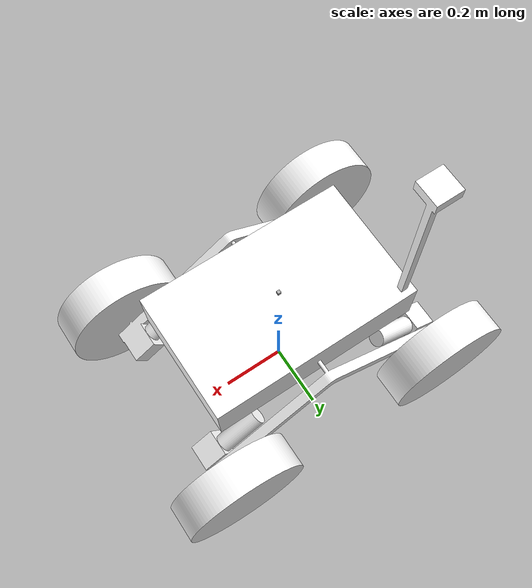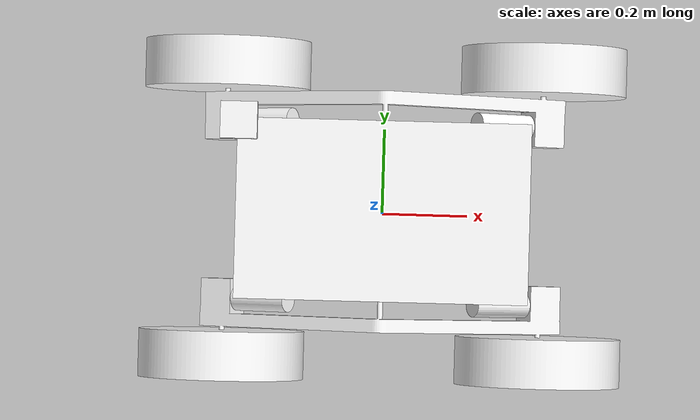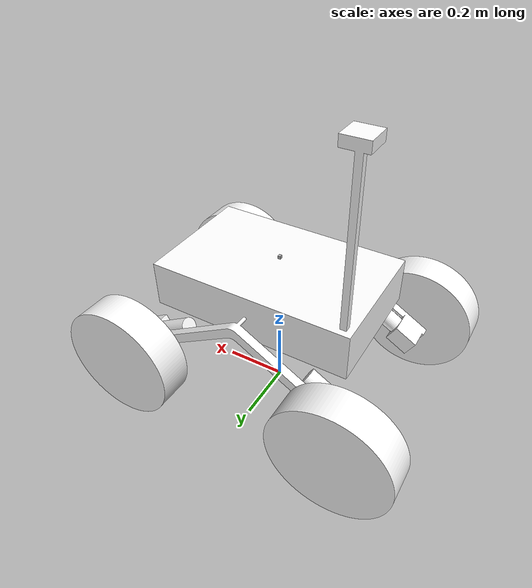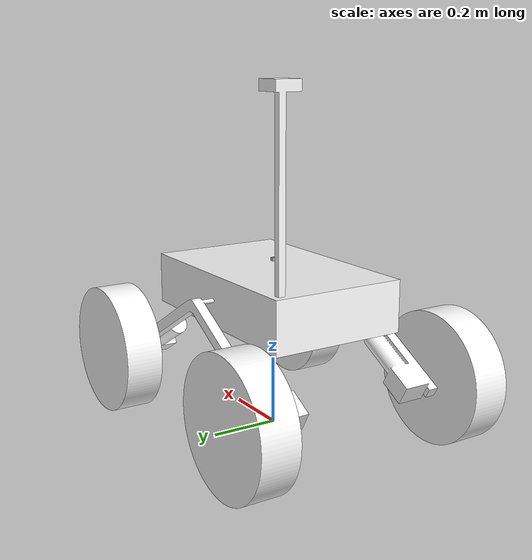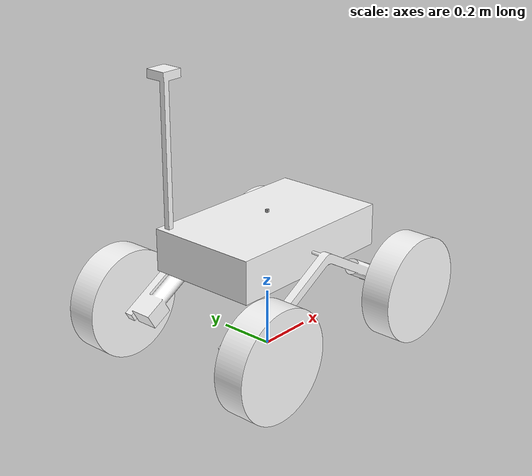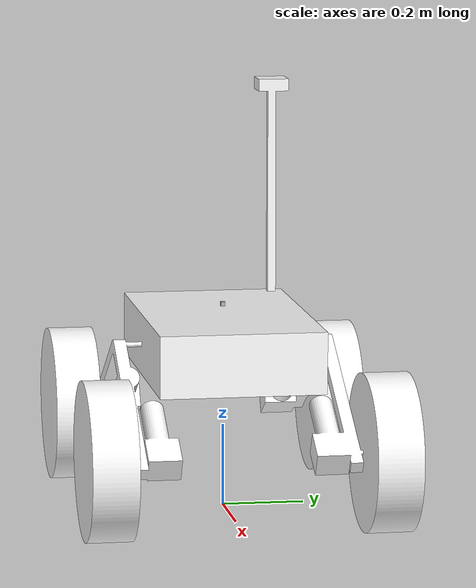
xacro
<?xml version="1.0" ?>
<robot name="rover" xmlns:xacro="http://www.ros.org/wiki/xacro">

  <xacro:include filename="$(find rover_description)/urdf/rover.trans" />

  <xacro:include filename="$(find rover_description)/urdf/rover_description.xacro" />

  <xacro:include filename="$(find rover_description)/urdf/diff_control.xacro" />

  <xacro:include filename="$(find rover_description)/urdf/rgbd.gazebo.xacro" />

  <xacro:include filename="$(find rover_description)/urdf/imu.gazebo.xacro" />
</robot>

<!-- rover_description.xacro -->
<robot name="rover" xmlns:xacro="http://www.ros.org/wiki/xacro">

<material name="silver">
  <color rgba="1.00 1.00 1.00 1.000"/>
</material>

<link name="base_link">
  <inertial>
    <origin xyz="-0.0027929867125631876 0.0016095177665623776 0.4092816334857682" rpy="0 0 0"/>
    <mass value="309.05833121832194"/>
    <inertia ixx="5.420217" iyy="12.286392" izz="15.1977" ixy="0.145354" iyz="-0.222827" ixz="0.38667"/>
  </inertial>
  <visual>
    <origin xyz="0 0 0.33" rpy="0 0 0"/>
    <geometry>
      <mesh filename="file://$(find rover_description)/meshes/base_link.stl" scale="0.001 0.001 0.001"/>
    </geometry>
    <material name="silver"/>
  </visual>
  <collision>
    <origin xyz="0 0 0.33" rpy="0 0 0"/>
    <geometry>
      <mesh filename="file://$(find rover_description)/meshes/base_link.stl" scale="0.001 0.001 0.001"/>
    </geometry>
  </collision>
</link>
<gazebo reference="base_link">
  <material>Gazebo/Orange</material>
</gazebo>

<link name="wheel_left_back_1">
  <inertial>
    <origin xyz="3.304105354318132e-07 0.05500000000000016 4.996003610813204e-16" rpy="0 0 0"/>
    <mass value="97.93082575512985"/>
    <inertia ixx="0.982573" iyy="1.767651" izz="0.982573" ixy="0.0" iyz="0.0" ixz="-0.0"/>
  </inertial>
  <visual>
    <origin xyz="0.363731 -0.278 0.135" rpy="0 0 0"/>
    <geometry>
      <mesh filename="file://$(find rover_description)/meshes/wheel_left_back_1.stl" scale="0.001 0.001 0.001"/>
    </geometry>
    <material name="silver"/>
  </visual>
  <collision>
    <origin xyz="0.363731 -0.278 0.135" rpy="0 0 0"/>
    <geometry>
      <mesh filename="file://$(find rover_description)/meshes/wheel_left_back_1.stl" scale="0.001 0.001 0.001"/>
    </geometry>
  </collision>
</link>

<link name="wheel_right_back_1">
  <inertial>
    <origin xyz="3.304105352097686e-07 -0.05499999999999988 4.996003610813204e-16" rpy="0 0 0"/>
    <mass value="97.93082575512983"/>
    <inertia ixx="0.982573" iyy="1.767651" izz="0.982573" ixy="0.0" iyz="-0.0" ixz="-0.0"/>
  </inertial>
  <visual>
    <origin xyz="0.363731 0.278 0.135" rpy="0 0 0"/>
    <geometry>
      <mesh filename="file://$(find rover_description)/meshes/wheel_right_back_1.stl" scale="0.001 0.001 0.001"/>
    </geometry>
    <material name="silver"/>
  </visual>
  <collision>
    <origin xyz="0.363731 0.278 0.135" rpy="0 0 0"/>
    <geometry>
      <mesh filename="file://$(find rover_description)/meshes/wheel_right_back_1.stl" scale="0.001 0.001 0.001"/>
    </geometry>
  </collision>
</link>

<link name="wheel_right_front_1">
  <inertial>
    <origin xyz="-3.304105354318132e-07 -0.05499999999999994 4.440892098500626e-16" rpy="0 0 0"/>
    <mass value="97.9308257551298"/>
    <inertia ixx="0.982573" iyy="1.767651" izz="0.982573" ixy="0.0" iyz="0.0" ixz="-0.0"/>
  </inertial>
  <visual>
    <origin xyz="-0.363731 0.278 0.135" rpy="0 0 0"/>
    <geometry>
      <mesh filename="file://$(find rover_description)/meshes/wheel_right_front_1.stl" scale="0.001 0.001 0.001"/>
    </geometry>
    <material name="silver"/>
  </visual>
  <collision>
    <origin xyz="-0.363731 0.278 0.135" rpy="0 0 0"/>
    <geometry>
      <mesh filename="file://$(find rover_description)/meshes/wheel_right_front_1.stl" scale="0.001 0.001 0.001"/>
    </geometry>
  </collision>
</link>

<link name="wheel_left_front_1">
  <inertial>
    <origin xyz="-3.3041053537630205e-07 0.05499999999999994 5.551115123125783e-16" rpy="0 0 0"/>
    <mass value="97.93082575512975"/>
    <inertia ixx="0.982573" iyy="1.767651" izz="0.982573" ixy="0.0" iyz="-0.0" ixz="-0.0"/>
  </inertial>
  <visual>
    <origin xyz="-0.363731 -0.278 0.135" rpy="0 0 0"/>
    <geometry>
      <mesh filename="file://$(find rover_description)/meshes/wheel_left_front_1.stl" scale="0.001 0.001 0.001"/>
    </geometry>
    <material name="silver"/>
  </visual>
  <collision>
    <origin xyz="-0.363731 -0.278 0.135" rpy="0 0 0"/>
    <geometry>
      <mesh filename="file://$(find rover_description)/meshes/wheel_left_front_1.stl" scale="0.001 0.001 0.001"/>
    </geometry>
  </collision>
</link>

<link name="chassis_left_1">
  <inertial>
    <origin xyz="-1.7308169517470362e-14 0.03167866965335492 -0.1594464649986759" rpy="0 0 0"/>
    <mass value="18.083780860304863"/>
    <inertia ixx="0.081138" iyy="1.630619" izz="1.582709" ixy="-0.0" iyz="-0.015402" ixz="-0.0"/>
  </inertial>
  <visual>
    <origin xyz="-0.0 -0.19 -0.075" rpy="0 0 0"/>
    <geometry>
      <mesh filename="file://$(find rover_description)/meshes/chassis_left_1.stl" scale="0.001 0.001 0.001"/>
    </geometry>
    <material name="silver"/>
  </visual>
  <collision>
    <origin xyz="-0.0 -0.19 -0.075" rpy="0 0 0"/>
    <geometry>
      <mesh filename="file://$(find rover_description)/meshes/chassis_left_1.stl" scale="0.001 0.001 0.001"/>
    </geometry>
  </collision>
</link>

<link name="chassis_right_1">
  <inertial>
    <origin xyz="-1.2633700377715634e-15 -0.031678669653354724 -0.15944646499867604" rpy="0 0 0"/>
    <mass value="18.083780860304806"/>
    <inertia ixx="0.081138" iyy="1.630619" izz="1.582709" ixy="-0.0" iyz="0.015402" ixz="0.0"/>
  </inertial>
  <visual>
    <origin xyz="0.0 0.19 -0.075" rpy="0 0 0"/>
    <geometry>
      <mesh filename="file://$(find rover_description)/meshes/chassis_right_1.stl" scale="0.001 0.001 0.001"/>
    </geometry>
    <material name="silver"/>
  </visual>
  <collision>
    <origin xyz="0.0 0.19 -0.075" rpy="0 0 0"/>
    <geometry>
      <mesh filename="file://$(find rover_description)/meshes/chassis_right_1.stl" scale="0.001 0.001 0.001"/>
    </geometry>
  </collision>
</link>

<joint name="left_back" type="continuous">
  <origin xyz="-0.363731 0.088 -0.21" rpy="0 0 0"/>
  <parent link="chassis_left_1"/>
  <child link="wheel_left_back_1"/>
  <axis xyz="0.0 1.0 -0.0"/>
</joint>

<joint name="right_back" type="continuous">
  <origin xyz="-0.363731 -0.088 -0.21" rpy="0 0 0"/>
  <parent link="chassis_right_1"/>
  <child link="wheel_right_back_1"/>
  <axis xyz="-0.0 1.0 0.0"/>
</joint>

<joint name="right_front" type="continuous">
  <origin xyz="0.363731 -0.088 -0.21" rpy="0 0 0"/>
  <parent link="chassis_right_1"/>
  <child link="wheel_right_front_1"/>
  <axis xyz="-0.0 1.0 0.0"/>
</joint>

<joint name="left_front" type="continuous">
  <origin xyz="0.363731 0.088 -0.21" rpy="0 0 0"/>
  <parent link="chassis_left_1"/>
  <child link="wheel_left_front_1"/>
  <axis xyz="0.0 1.0 -0.0"/>
</joint>

<joint name="link_left" type="fixed">
  <origin xyz="0.0 0.19 0.405" rpy="0 0 0"/>
  <parent link="base_link"/>
  <child link="chassis_left_1"/>
  <axis xyz="0.0 1.0 -0.0"/>
</joint>

<joint name="link_right" type="fixed">
  <origin xyz="0.0 -0.19 0.405" rpy="0 0 0"/>
  <parent link="base_link"/>
  <child link="chassis_right_1"/>
  <axis xyz="0.0 -1.0 0.0"/>
</joint>

</robot>

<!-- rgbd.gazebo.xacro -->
<robot xmlns:xacro="http://ros.org/wiki/xacro">
    <!-- Load parameters to model's main link-->

    <link name="camera_link"/>
    <link name="depth_link"/>

    <joint name="base_to_camera" type="fixed">
      <origin xyz="0.35 0.0 0.4" rpy="0 0 0"/>
      <parent link="base_link"/>
      <child link="camera_link"/>
    </joint>

    <joint name="camera_to_depth" type="fixed">
      <origin xyz="0.0 0.0 0.0" rpy="-1.5707 0 -1.5707"/>
      <parent link="camera_link"/>
      <child link="depth_link"/>
    </joint>

    <gazebo reference="camera_link">
      <gazebo reference="link1">
        <material>Gazebo/Orange</material>
      </gazebo>
      <sensor name="color" type="camera">
        <camera name="color">
          <image>
            <width>1280</width>
            <height>720</height>
            <format>RGB_INT8</format>
          </image>
          <clip>
            <near>0.1</near>
            <far>100</far>
          </clip>
          <noise>
            <type>gaussian</type>
            <mean>0.0</mean>
            <stddev>0.007</stddev>
          </noise>
        </camera>
        <always_on>1</always_on>
        <update_rate>10</update_rate>
        <visualize>0</visualize>
        <plugin name="color" filename="libgazebo_ros_camera.so">
          <alwaysOn>true</alwaysOn>
          <updateRate>30.0</updateRate>
          <frame_name>depth_link</frame_name>
          <hackBaseline>0.07</hackBaseline>
          <distortionK1>0.0</distortionK1>
          <distortionK2>0.0</distortionK2>
          <distortionK3>0.0</distortionK3>
          <distortionT1>0.0</distortionT1>
          <distortionT2>0.0</distortionT2>
        </plugin>
      </sensor>
    </gazebo>

    <!-- mimic realsense d435 ability -->
    <gazebo reference="camera_link">
        <sensor type="depth" name="depth">
          <always_on>0</always_on>
          <update_rate>10</update_rate>
          <camera name="depth">
            <image>
              <width>1280</width>
              <height>720</height>
              <format>R8G8B8</format>
            </image>
            <horizontal_fov>1.57</horizontal_fov>
            <distortion>
              <k1>0.1</k1>
              <k2>0.2</k2>
              <k3>0.3</k3>
              <p1>0.4</p1>
              <p2>0.5</p2>
              <center>0.5 0.5</center>
            </distortion>
          </camera>

          <plugin name="depth" filename="libgazebo_ros_camera.so">
            <frame_name>depth_link</frame_name>
            <hack_baseline>0.07</hack_baseline>
            <min_depth>0.4</min_depth>
            <max_depth>20.0</max_depth>
          </plugin>
        </sensor>
    </gazebo>
</robot>

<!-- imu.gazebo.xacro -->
<robot xmlns:xacro="http://ros.org/wiki/xacro">
    <link name="imu_link">
      <collision>
        <origin xyz="0 0 0" rpy="0 0 0"/>
        <geometry>
          <box size="0.01 0.01 0.01"/>
        </geometry>
      </collision>
      <visual>
        <origin xyz="0 0 0" rpy="0 0 0"/>
        <geometry>
          <box size="0.01 0.01 0.01"/>
        </geometry>
        <material name="silver">
          <color rgba="0.700 0.700 0.700 1.000"/>
        </material>
      </visual>
      <inertial>
        <mass value="1e-5" />
        <origin xyz="0 0 0" rpy="0 0 0"/>
        <inertia ixx="1e-6" ixy="0" ixz="0" iyy="1e-6" iyz="0" izz="1e-6" />
      </inertial>
    </link>

    <joint name="imu_joint" type="fixed">
      <axis xyz="0 1 0" />
      <origin xyz="0. 0.0 0.5" rpy="0 0 0"/>
      <parent link="base_link"/>
      <child link="imu_link"/>
    </joint>

    <gazebo reference="imu_link">
        <gravity>true</gravity>
        <sensor name="imu_sensor" type="imu">
        <always_on>true</always_on>
        <update_rate>10</update_rate>
        <visualize>true</visualize>
        <topic>__default_topic__</topic>
        <plugin filename="libgazebo_ros_imu_sensor.so" name="imu_plugin">
            <ros>
                <remapping>/imu_plugin/out:=/sim/imu</remapping>
            </ros>
            <bodyName>imu_link</bodyName>
            <updateRateHZ>10.0</updateRateHZ>
            <gaussianNoise>0.0</gaussianNoise>
            <xyzOffset>0 0 0</xyzOffset>
            <rpyOffset>0 0 0</rpyOffset>
            <frameName>imu_link</frameName>
            <initialOrientationAsReference>false</initialOrientationAsReference>
        </plugin>
        <pose>0 0 0 0 0 0</pose>
        </sensor>
    </gazebo>
</robot>
